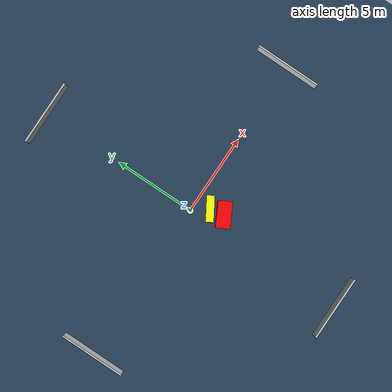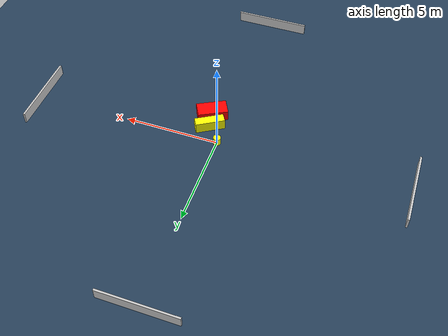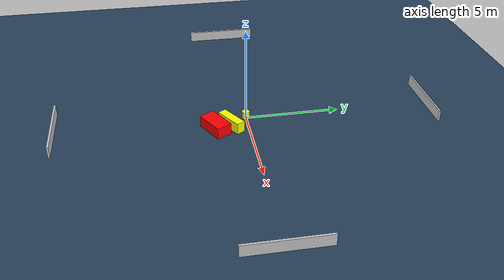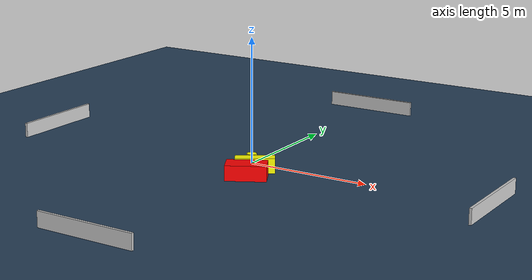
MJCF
<?xml version="1.0" ?>
<mujoco model="generated_environment">
  <option timestep="0.01" integrator="RK4" cone="elliptic"/>
  <default>
    <geom density="1"/>
  </default>
  <asset>
    <texture builtin="gradient" height="3072" name="skybox" rgb1="0.3 0.5 0.7" rgb2="0 0 0" type="skybox" width="512"/>
    <texture builtin="checker" height="300" name="groundplane" rgb1="0.2 0.3 0.4" rgb2="0.1 0.2 0.3" type="2d" width="300"/>
    <material name="groundplane" reflectance="0.2" texrepeat="5 5" texture="groundplane"/>
  </asset>
  <worldbody>
    <light dir="0 0 -1" directional="true" pos="0 0 1.5"/>
    <geom condim="3" friction="0.5 0.005 0.001" material="groundplane" name="floor" pos="0 0 0" size="0 0 0.05" type="plane"/>
    <body name="walls">
      <geom name="wall_1" condim="4" pos="-10.0 0.0 0.3" rgba="0.800000011920929 0.800000011920929 0.800000011920929 1.0" size="0.05 2.0 0.3" type="box"/>
      <geom name="wall_2" condim="4" pos="10.0 0.0 0.3" rgba="0.800000011920929 0.800000011920929 0.800000011920929 1.0" size="0.05 2.0 0.3" type="box"/>
      <geom name="wall_3" condim="4" pos="0.0 -10.0 0.3" rgba="0.800000011920929 0.800000011920929 0.800000011920929 1.0" size="2.0 0.05 0.3" type="box"/>
      <geom name="wall_4" condim="4" pos="0.0 10.0 0.3" rgba="0.800000011920929 0.800000011920929 0.800000011920929 1.0" size="2.0 0.05 0.3" type="box"/>
    </body>
    <body name="robot">
      <joint name="joint_x" type="slide" pos="0 0 0" axis="1 0 0"/>
      <joint name="joint_y" type="slide" pos="0 0 0" axis="0 1 0"/>
      <geom name="robot" type="cylinder" pos="0.0 0.0 0.2" size="0.2 0.2 0.0" mass="5.0" friction="1.0 0.005 0.0001" condim="4" rgba="1.0 1.0 0.0 1.0"/>
    </body>
    <body name="obstacle_1_movable">
      <geom name="obstacle_1_movable" condim="4" pos="0.7201858752187024 -0.89003711550603 0.3" euler="0 0 121.40881651329674" friction="0.0 0.005 0.001" rgba="1.0 1.0 0.0 1.0" size="0.23425821003284528 0.7687818493750722 0.3" type="box" mass="0.1"/>
      <joint type="free"/>
    </body>
    <body name="obstacle_2_static">
      <geom name="obstacle_2_static" condim="4" pos="0.8831312279231096 -1.737149421975561 0.3" euler="0 0 298.2075975012482" friction="0.0 0.005 0.001" rgba="1.0 0.0 0.0 1.0" size="0.4210488330215243 0.7915489719839819 0.3" type="box"/>
    </body>
  </worldbody>
  <actuator>
    <motor name="actuator_x" joint="joint_x" gear="1" ctrlrange="-1 1"/>
    <motor name="actuator_y" joint="joint_y" gear="1" ctrlrange="-1 1"/>
  </actuator>
</mujoco>
